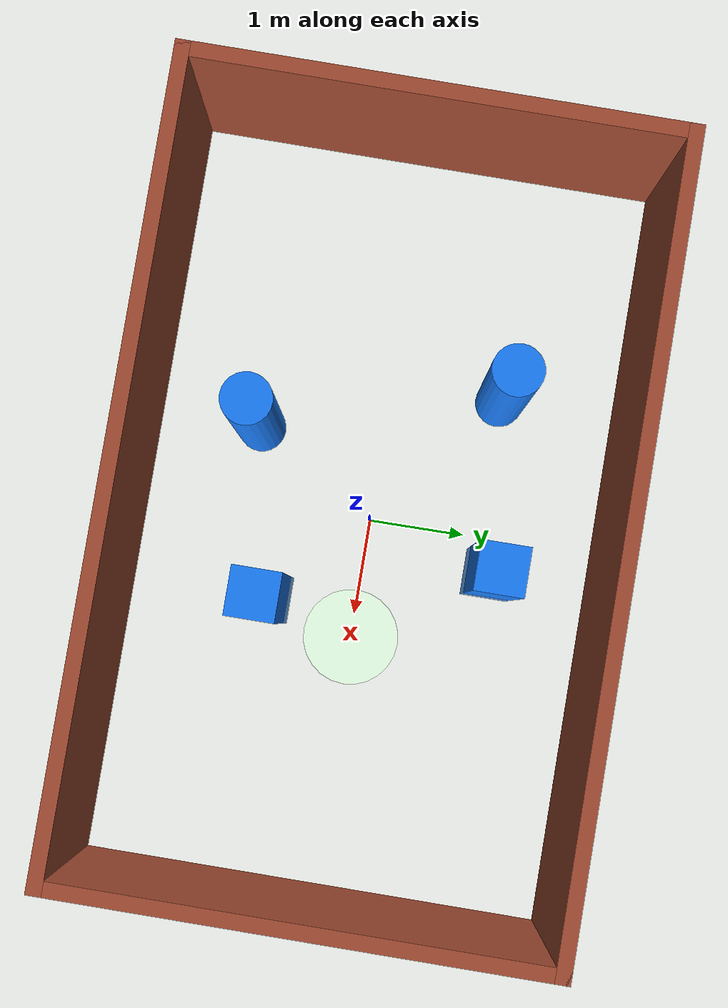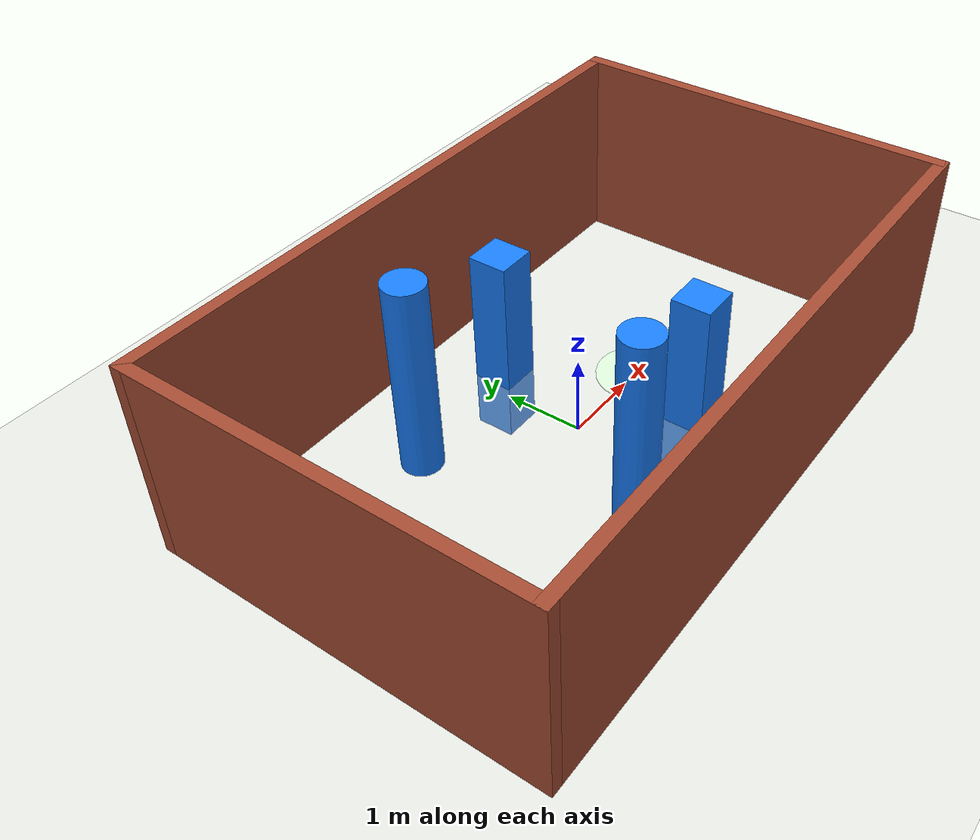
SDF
<?xml version="1.0" ?>
<sdf version='1.6'>
  <world name='default'>
    <light name='sun' type='directional'>
      <cast_shadows>1</cast_shadows>
      <pose frame=''>0 0 10 0 -0 0</pose>
      <diffuse>0.8 0.8 0.8 1</diffuse>
      <specular>0.2 0.2 0.2 1</specular>
      <attenuation>
        <range>1000</range>
        <constant>0.9</constant>
        <linear>0.01</linear>
        <quadratic>0.001</quadratic>
      </attenuation>
      <direction>-0.5 0.1 -0.9</direction>
    </light>
    <model name='ground_plane'>
      <static>1</static>
      <link name='link'>
        <collision name='collision'>
          <geometry>
            <plane>
              <normal>0 0 1</normal>
              <size>100 100</size>
            </plane>
          </geometry>
          <surface>
            <contact>
              <collide_bitmask>65535</collide_bitmask>
              <ode/>
            </contact>
            <friction>
              <ode>
                <mu>100</mu>
                <mu2>50</mu2>
              </ode>
              <torsional>
                <ode/>
              </torsional>
            </friction>
            <bounce/>
          </surface>
          <max_contacts>10</max_contacts>
        </collision>
        <visual name='visual'>
          <cast_shadows>0</cast_shadows>
          <geometry>
            <plane>
              <normal>0 0 1</normal>
              <size>100 100</size>
            </plane>
          </geometry>
          <material>
            <script>
              <uri>file://media/materials/scripts/gazebo.material</uri>
              <name>Gazebo/Grey</name>
            </script>
          </material>
        </visual>
        <self_collide>0</self_collide>
        <enable_wind>0</enable_wind>
        <kinematic>0</kinematic>
      </link>
    </model>
    <gravity>0 0 -9.8</gravity>
    <magnetic_field>6e-06 2.3e-05 -4.2e-05</magnetic_field>
    <atmosphere type='adiabatic'/>
    <physics name='default_physics' default='0' type='ode'>
      <max_step_size>0.001</max_step_size>
      <real_time_factor>1</real_time_factor>
      <real_time_update_rate>1000</real_time_update_rate>
    </physics>
    <scene>
      <ambient>0.4 0.4 0.4 1</ambient>
      <background>0.7 0.7 0.7 1</background>
      <shadows>1</shadows>
    </scene>
    <wind/>
    <spherical_coordinates>
      <surface_model>EARTH_WGS84</surface_model>
      <latitude_deg>0</latitude_deg>
      <longitude_deg>0</longitude_deg>
      <elevation>0</elevation>
      <heading_deg>0</heading_deg>
    </spherical_coordinates>
    <model name='benchmark1'>
      <pose frame=''>0 0 0 0 -0 1.57</pose>
      <link name='Wall_1'>
        <collision name='Wall_1_Collision'>
          <geometry>
            <box>
              <size>8 0.15 2.5</size>
            </box>
          </geometry>
          <pose frame=''>0 0 1.25 0 -0 0</pose>
          <max_contacts>10</max_contacts>
          <surface>
            <contact>
              <ode/>
            </contact>
            <bounce/>
            <friction>
              <torsional>
                <ode/>
              </torsional>
              <ode/>
            </friction>
          </surface>
        </collision>
        <visual name='Wall_1_Visual'>
          <pose frame=''>0 0 1.25 0 -0 0</pose>
          <geometry>
            <box>
              <size>8 0.15 2.5</size>
            </box>
          </geometry>
          <material>
            <script>
              <uri>file://media/materials/scripts/gazebo.material</uri>
              <name>Gazebo/Bricks</name>
            </script>
            <ambient>1 1 1 1</ambient>
          </material>
          <meta>
            <layer>0</layer>
          </meta>
        </visual>
        <pose frame=''>-2.425 0 0 0 -0 -1.5708</pose>
        <self_collide>0</self_collide>
        <enable_wind>0</enable_wind>
        <kinematic>0</kinematic>
      </link>
      <link name='Wall_2'>
        <collision name='Wall_2_Collision'>
          <geometry>
            <box>
              <size>5 0.15 2.5</size>
            </box>
          </geometry>
          <pose frame=''>0 0 1.25 0 -0 0</pose>
          <max_contacts>10</max_contacts>
          <surface>
            <contact>
              <ode/>
            </contact>
            <bounce/>
            <friction>
              <torsional>
                <ode/>
              </torsional>
              <ode/>
            </friction>
          </surface>
        </collision>
        <visual name='Wall_2_Visual'>
          <pose frame=''>0 0 1.25 0 -0 0</pose>
          <geometry>
            <box>
              <size>5 0.15 2.5</size>
            </box>
          </geometry>
          <material>
            <script>
              <uri>file://media/materials/scripts/gazebo.material</uri>
              <name>Gazebo/Bricks</name>
            </script>
            <ambient>1 1 1 1</ambient>
          </material>
          <meta>
            <layer>0</layer>
          </meta>
        </visual>
        <pose frame=''>0 -3.925 0 0 -0 0</pose>
        <self_collide>0</self_collide>
        <enable_wind>0</enable_wind>
        <kinematic>0</kinematic>
      </link>
      <link name='Wall_3'>
        <collision name='Wall_3_Collision'>
          <geometry>
            <box>
              <size>8 0.15 2.5</size>
            </box>
          </geometry>
          <pose frame=''>0 0 1.25 0 -0 0</pose>
          <max_contacts>10</max_contacts>
          <surface>
            <contact>
              <ode/>
            </contact>
            <bounce/>
            <friction>
              <torsional>
                <ode/>
              </torsional>
              <ode/>
            </friction>
          </surface>
        </collision>
        <visual name='Wall_3_Visual'>
          <pose frame=''>0 0 1.25 0 -0 0</pose>
          <geometry>
            <box>
              <size>8 0.15 2.5</size>
            </box>
          </geometry>
          <material>
            <script>
              <uri>file://media/materials/scripts/gazebo.material</uri>
              <name>Gazebo/Bricks</name>
            </script>
            <ambient>1 1 1 1</ambient>
          </material>
          <meta>
            <layer>0</layer>
          </meta>
        </visual>
        <pose frame=''>2.425 0 0 0 -0 1.5708</pose>
        <self_collide>0</self_collide>
        <enable_wind>0</enable_wind>
        <kinematic>0</kinematic>
      </link>
      <link name='Wall_4'>
        <collision name='Wall_4_Collision'>
          <geometry>
            <box>
              <size>5 0.15 2.5</size>
            </box>
          </geometry>
          <pose frame=''>0 0 1.25 0 -0 0</pose>
          <max_contacts>10</max_contacts>
          <surface>
            <contact>
              <ode/>
            </contact>
            <bounce/>
            <friction>
              <torsional>
                <ode/>
              </torsional>
              <ode/>
            </friction>
          </surface>
        </collision>
        <visual name='Wall_4_Visual'>
          <pose frame=''>0 0 1.25 0 -0 0</pose>
          <geometry>
            <box>
              <size>5 0.15 2.5</size>
            </box>
          </geometry>
          <material>
            <script>
              <uri>file://media/materials/scripts/gazebo.material</uri>
              <name>Gazebo/Bricks</name>
            </script>
            <ambient>1 1 1 1</ambient>
          </material>
          <meta>
            <layer>0</layer>
          </meta>
        </visual>
        <pose frame=''>0 3.925 0 0 -0 3.14159</pose>
        <self_collide>0</self_collide>
        <enable_wind>0</enable_wind>
        <kinematic>0</kinematic>
      </link>
      <static>1</static>
    </model>
    <model name='unit_cylinder'>
      <pose frame=''>-1.45 1.15 1.25 0 -0 0.000312</pose>
      <link name='link'>
        <inertial>
          <mass>1</mass>
          <inertia>
            <ixx>0.145833</ixx>
            <ixy>0</ixy>
            <ixz>0</ixz>
            <iyy>0.145833</iyy>
            <iyz>0</iyz>
            <izz>0.125</izz>
          </inertia>
          <pose frame=''>0 0 0 0 -0 0</pose>
        </inertial>
        <self_collide>0</self_collide>
        <enable_wind>0</enable_wind>
        <kinematic>0</kinematic>
        <pose frame=''>0 0 0 0 -0 0</pose>
        <gravity>1</gravity>
        <visual name='visual'>
          <geometry>
            <cylinder>
              <radius>0.25</radius>
              <length>2.5</length>
            </cylinder>
          </geometry>
          <material>
            <script>
              <name>Gazebo/Grey</name>
              <uri>file://media/materials/scripts/gazebo.material</uri>
            </script>
            <shader type='pixel'>
              <normal_map>__default__</normal_map>
            </shader>
            <ambient>0.3 0.3 1 1</ambient>
            <diffuse>0.1 0.5 1 1</diffuse>
            <specular>0.1 0.1 1 1</specular>
            <emissive>0.1 0.1 1 1</emissive>
          </material>
          <pose frame=''>0 0 0 0 -0 0</pose>
          <transparency>0</transparency>
          <cast_shadows>1</cast_shadows>
        </visual>
        <collision name='collision'>
          <laser_retro>0</laser_retro>
          <max_contacts>10</max_contacts>
          <pose frame=''>0 0 0 0 -0 0</pose>
          <geometry>
            <cylinder>
              <radius>0.25</radius>
              <length>2.5</length>
            </cylinder>
          </geometry>
          <surface>
            <friction>
              <ode>
                <mu>1</mu>
                <mu2>1</mu2>
                <fdir1>0 0 0</fdir1>
                <slip1>0</slip1>
                <slip2>0</slip2>
              </ode>
              <torsional>
                <coefficient>1</coefficient>
                <patch_radius>0</patch_radius>
                <surface_radius>0</surface_radius>
                <use_patch_radius>1</use_patch_radius>
                <ode>
                  <slip>0</slip>
                </ode>
              </torsional>
            </friction>
            <bounce>
              <restitution_coefficient>0</restitution_coefficient>
              <threshold>1e+06</threshold>
            </bounce>
            <contact>
              <collide_without_contact>0</collide_without_contact>
              <collide_without_contact_bitmask>1</collide_without_contact_bitmask>
              <collide_bitmask>1</collide_bitmask>
              <ode>
                <soft_cfm>0</soft_cfm>
                <soft_erp>0.2</soft_erp>
                <kp>1e+13</kp>
                <kd>1</kd>
                <max_vel>0.01</max_vel>
                <min_depth>0</min_depth>
              </ode>
              <bullet>
                <split_impulse>1</split_impulse>
                <split_impulse_penetration_threshold>-0.01</split_impulse_penetration_threshold>
                <soft_cfm>0</soft_cfm>
                <soft_erp>0.2</soft_erp>
                <kp>1e+13</kp>
                <kd>1</kd>
              </bullet>
            </contact>
          </surface>
        </collision>
      </link>
      <static>0</static>
      <allow_auto_disable>1</allow_auto_disable>
      <pose frame=''>-1.49943 0.568438 0.499993 -3e-06 -4e-06 -0</pose>
    </model>
    <model name='unit_cylinder_clone'>
      <pose frame=''>-0.782576 -1.28244 1.25 0 -0 0.00031</pose>
      <link name='link'>
        <inertial>
          <mass>1</mass>
          <inertia>
            <ixx>0.145833</ixx>
            <ixy>0</ixy>
            <ixz>0</ixz>
            <iyy>0.145833</iyy>
            <iyz>0</iyz>
            <izz>0.125</izz>
          </inertia>
          <pose frame=''>0 0 0 0 -0 0</pose>
        </inertial>
        <self_collide>0</self_collide>
        <enable_wind>0</enable_wind>
        <kinematic>0</kinematic>
        <pose frame=''>0 0 0 0 -0 0</pose>
        <gravity>1</gravity>
        <visual name='visual'>
          <geometry>
            <cylinder>
              <radius>0.25</radius>
              <length>2.5</length>
            </cylinder>
          </geometry>
          <material>
            <script>
              <name>Gazebo/Grey</name>
              <uri>file://media/materials/scripts/gazebo.material</uri>
            </script>
            <shader type='pixel'>
              <normal_map>__default__</normal_map>
            </shader>
            <ambient>0.3 0.3 1 1</ambient>
            <diffuse>0.1 0.5 1 1</diffuse>
            <specular>0.1 0.1 1 1</specular>
            <emissive>0.1 0.1 1 1</emissive>
          </material>
          <pose frame=''>0 0 0 0 -0 0</pose>
          <transparency>0</transparency>
          <cast_shadows>1</cast_shadows>
        </visual>
        <collision name='collision'>
          <laser_retro>0</laser_retro>
          <max_contacts>10</max_contacts>
          <pose frame=''>0 0 0 0 -0 0</pose>
          <geometry>
            <cylinder>
              <radius>0.25</radius>
              <length>2.5</length>
            </cylinder>
          </geometry>
          <surface>
            <friction>
              <ode>
                <mu>1</mu>
                <mu2>1</mu2>
                <fdir1>0 0 0</fdir1>
                <slip1>0</slip1>
                <slip2>0</slip2>
              </ode>
              <torsional>
                <coefficient>1</coefficient>
                <patch_radius>0</patch_radius>
                <surface_radius>0</surface_radius>
                <use_patch_radius>1</use_patch_radius>
                <ode>
                  <slip>0</slip>
                </ode>
              </torsional>
            </friction>
            <bounce>
              <restitution_coefficient>0</restitution_coefficient>
              <threshold>1e+06</threshold>
            </bounce>
            <contact>
              <collide_without_contact>0</collide_without_contact>
              <collide_without_contact_bitmask>1</collide_without_contact_bitmask>
              <collide_bitmask>1</collide_bitmask>
              <ode>
                <soft_cfm>0</soft_cfm>
                <soft_erp>0.2</soft_erp>
                <kp>1e+13</kp>
                <kd>1</kd>
                <max_vel>0.01</max_vel>
                <min_depth>0</min_depth>
              </ode>
              <bullet>
                <split_impulse>1</split_impulse>
                <split_impulse_penetration_threshold>-0.01</split_impulse_penetration_threshold>
                <soft_cfm>0</soft_cfm>
                <soft_erp>0.2</soft_erp>
                <kp>1e+13</kp>
                <kd>1</kd>
              </bullet>
            </contact>
          </surface>
        </collision>
      </link>
      <static>0</static>
      <allow_auto_disable>1</allow_auto_disable>
      <pose frame=''>-0.982576 -0.98244 1.25 0 -0 0.000311</pose>
    </model>
    <model name='unit_box'>
      <pose frame=''>0.35 1.35 0.5 0 -0 0</pose>
      <link name='link'>
        <inertial>
          <mass>1</mass>
          <inertia>
            <ixx>0.166667</ixx>
            <ixy>0</ixy>
            <ixz>0</ixz>
            <iyy>0.166667</iyy>
            <iyz>0</iyz>
            <izz>0.166667</izz>
          </inertia>
          <pose frame=''>0 0 0 0 -0 0</pose>
        </inertial>
        <self_collide>0</self_collide>
        <enable_wind>0</enable_wind>
        <kinematic>0</kinematic>
        <pose frame=''>0 0 0 0 -0 0</pose>
        <gravity>1</gravity>
        <visual name='visual'>
          <geometry>
            <box>
              <size>0.5 0.5 2.5</size>
            </box>
          </geometry>
          <material>
            <script>
              <name>Gazebo/Grey</name>
              <uri>file://media/materials/scripts/gazebo.material</uri>
            </script>
            <shader type='pixel'>
              <normal_map>__default__</normal_map>
            </shader>
            <ambient>0.3 0.3 1 1</ambient>
            <diffuse>0.1 0.5 1 1</diffuse>
            <specular>0.1 0.1 1 1</specular>
            <emissive>0.1 0.1 1 1</emissive>
          </material>
          <pose frame=''>0 0 0 0 -0 0</pose>
          <transparency>0</transparency>
          <cast_shadows>1</cast_shadows>
        </visual>
        <collision name='collision'>
          <laser_retro>0</laser_retro>
          <max_contacts>10</max_contacts>
          <pose frame=''>0 0 0 0 -0 0</pose>
          <geometry>
            <box>
              <size>0.5 0.5 2.5</size>
            </box>
          </geometry>
          <surface>
            <friction>
              <ode>
                <mu>1</mu>
                <mu2>1</mu2>
                <fdir1>0 0 0</fdir1>
                <slip1>0</slip1>
                <slip2>0</slip2>
              </ode>
              <torsional>
                <coefficient>1</coefficient>
                <patch_radius>0</patch_radius>
                <surface_radius>0</surface_radius>
                <use_patch_radius>1</use_patch_radius>
                <ode>
                  <slip>0</slip>
                </ode>
              </torsional>
            </friction>
            <bounce>
              <restitution_coefficient>0</restitution_coefficient>
              <threshold>1e+06</threshold>
            </bounce>
            <contact>
              <collide_without_contact>0</collide_without_contact>
              <collide_without_contact_bitmask>1</collide_without_contact_bitmask>
              <collide_bitmask>1</collide_bitmask>
              <ode>
                <soft_cfm>0</soft_cfm>
                <soft_erp>0.2</soft_erp>
                <kp>1e+13</kp>
                <kd>1</kd>
                <max_vel>0.01</max_vel>
                <min_depth>0</min_depth>
              </ode>
              <bullet>
                <split_impulse>1</split_impulse>
                <split_impulse_penetration_threshold>-0.01</split_impulse_penetration_threshold>
                <soft_cfm>0</soft_cfm>
                <soft_erp>0.2</soft_erp>
                <kp>1e+13</kp>
                <kd>1</kd>
              </bullet>
            </contact>
          </surface>
        </collision>
      </link>
      <static>0</static>
      <allow_auto_disable>1</allow_auto_disable>
      <pose frame=''>1.33914 1.00629 0.5 0 -0 0</pose>
    </model>
    <model name='unit_box_clone'>
      <pose frame=''>0.97746 -0.97399 0.5 0 -0 0</pose>
      <link name='link'>
        <inertial>
          <mass>1</mass>
          <inertia>
            <ixx>0.166667</ixx>
            <ixy>0</ixy>
            <ixz>0</ixz>
            <iyy>0.166667</iyy>
            <iyz>0</iyz>
            <izz>0.166667</izz>
          </inertia>
          <pose frame=''>0 0 0 0 -0 0</pose>
        </inertial>
        <self_collide>0</self_collide>
        <enable_wind>0</enable_wind>
        <kinematic>0</kinematic>
        <pose frame=''>0 0 0 0 -0 0</pose>
        <gravity>1</gravity>
        <visual name='visual'>
          <geometry>
            <box>
              <size>0.5 0.5 2.5</size>
            </box>
          </geometry>
          <material>
            <script>
              <name>Gazebo/Grey</name>
              <uri>file://media/materials/scripts/gazebo.material</uri>
            </script>
            <shader type='pixel'>
              <normal_map>__default__</normal_map>
            </shader>
            <ambient>0.3 0.3 1 1</ambient>
            <diffuse>0.1 0.5 1 1</diffuse>
            <specular>0.1 0.1 1 1</specular>
            <emissive>0.1 0.1 1 1</emissive>
          </material>
          <pose frame=''>0 0 0 0 -0 0</pose>
          <transparency>0</transparency>
          <cast_shadows>1</cast_shadows>
        </visual>
        <collision name='collision'>
          <laser_retro>0</laser_retro>
          <max_contacts>10</max_contacts>
          <pose frame=''>0 0 0 0 -0 0</pose>
          <geometry>
            <box>
              <size>0.5 0.5 2.5</size>
            </box>
          </geometry>
          <surface>
            <friction>
              <ode>
                <mu>1</mu>
                <mu2>1</mu2>
                <fdir1>0 0 0</fdir1>
                <slip1>0</slip1>
                <slip2>0</slip2>
              </ode>
              <torsional>
                <coefficient>1</coefficient>
                <patch_radius>0</patch_radius>
                <surface_radius>0</surface_radius>
                <use_patch_radius>1</use_patch_radius>
                <ode>
                  <slip>0</slip>
                </ode>
              </torsional>
            </friction>
            <bounce>
              <restitution_coefficient>0</restitution_coefficient>
              <threshold>1e+06</threshold>
            </bounce>
            <contact>
              <collide_without_contact>0</collide_without_contact>
              <collide_without_contact_bitmask>1</collide_without_contact_bitmask>
              <collide_bitmask>1</collide_bitmask>
              <ode>
                <soft_cfm>0</soft_cfm>
                <soft_erp>0.2</soft_erp>
                <kp>1e+13</kp>
                <kd>1</kd>
                <max_vel>0.01</max_vel>
                <min_depth>0</min_depth>
              </ode>
              <bullet>
                <split_impulse>1</split_impulse>
                <split_impulse_penetration_threshold>-0.01</split_impulse_penetration_threshold>
                <soft_cfm>0</soft_cfm>
                <soft_erp>0.2</soft_erp>
                <kp>1e+13</kp>
                <kd>1</kd>
              </bullet>
            </contact>
          </surface>
        </collision>
      </link>
      <static>0</static>
      <allow_auto_disable>1</allow_auto_disable>
      <pose frame=''>1.08746 -0.47399 0.5 0 -0 0</pose>
    </model>
    <model name='spotlight'>
      <link name='link'>
        <inertial>
          <mass>1</mass>
          <inertia>
            <ixx>0.145833</ixx>
            <ixy>0</ixy>
            <ixz>0</ixz>
            <iyy>0.145833</iyy>
            <iyz>0</iyz>
            <izz>0.125</izz>
          </inertia>
          <pose frame=''>0 0 0 0 -0 0</pose>
        </inertial>
        <self_collide>0</self_collide>
        <enable_wind>0</enable_wind>
        <kinematic>0</kinematic>
        <pose frame=''>0 0 0 0 -0 0</pose>
        <gravity>0</gravity>
        <visual name='visual'>
          <geometry>
            <cylinder>
              <radius>0.5</radius>
              <length>0.02</length>
            </cylinder>
          </geometry>
          <material>
            <script>
              <name>Gazebo/Grey</name>
              <uri>file://media/materials/scripts/gazebo.material</uri>
            </script>
            <shader type='pixel'>
              <normal_map>__default__</normal_map>
            </shader>
            <ambient>0.1 1 0.1 1</ambient>
            <diffuse>0.7 1 0.7 1</diffuse>
            <specular>0.01 0.31 0.01 1</specular>
            <emissive>0 0 0 1</emissive>
          </material>
          <pose frame=''>0 0 0 0 -0 0</pose>
          <transparency>0.7</transparency>
          <cast_shadows>1</cast_shadows>
        </visual>
      </link>
      <static>0</static>
      <allow_auto_disable>1</allow_auto_disable>
      <pose frame=''>1.25 0 0 0 0 -0</pose>
      <visibility_flags> 0 </visibility_flags>
    </model>
    <gui fullscreen='0'>
      <camera name='user_camera'>
        <pose frame=''>0 0 16.8297 3.14159 1.57079 3.14159</pose>
        <view_controller>orbit</view_controller>
        <projection_type>perspective</projection_type>
      </camera>
    </gui>
  </world>
</sdf>
